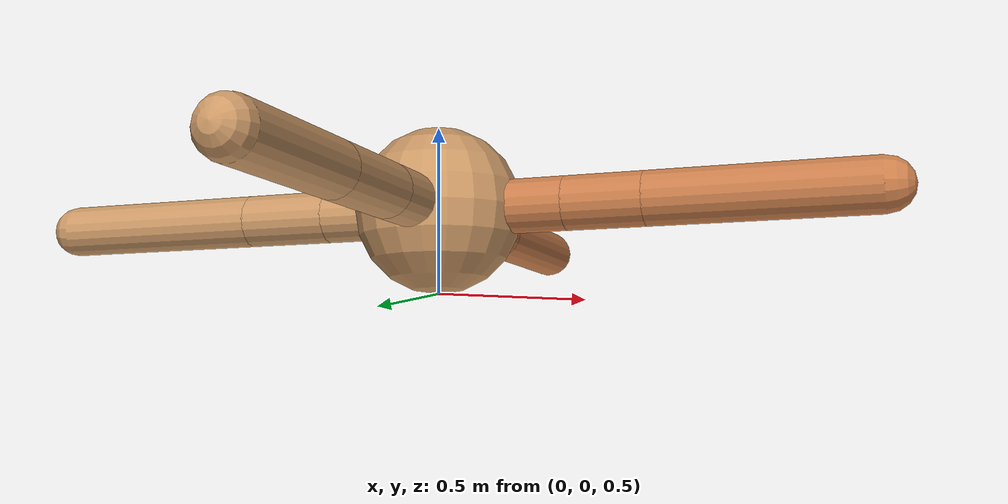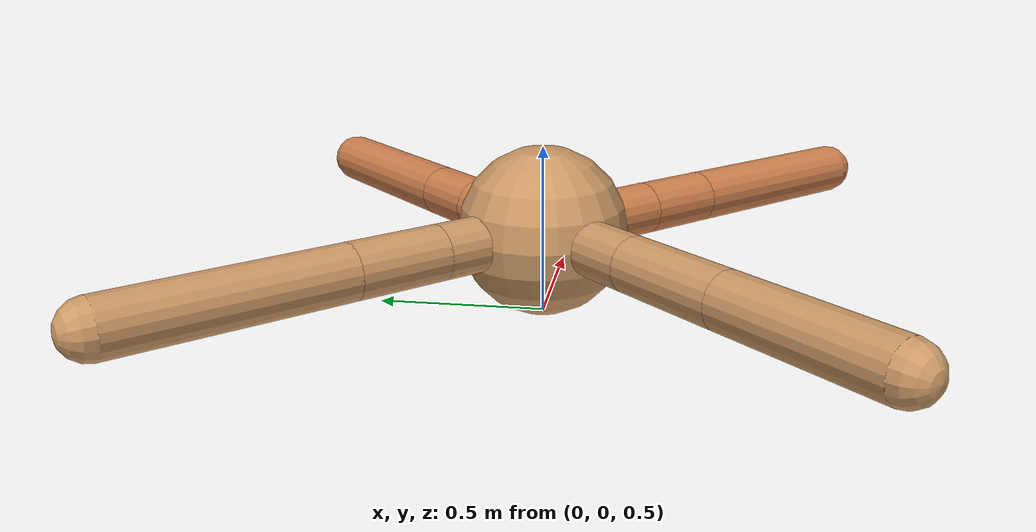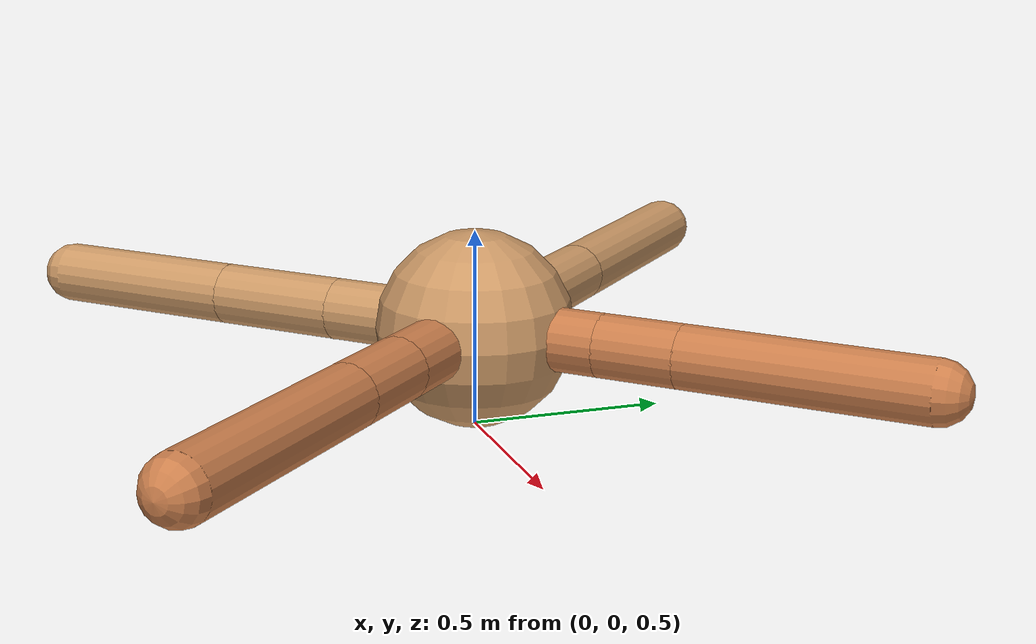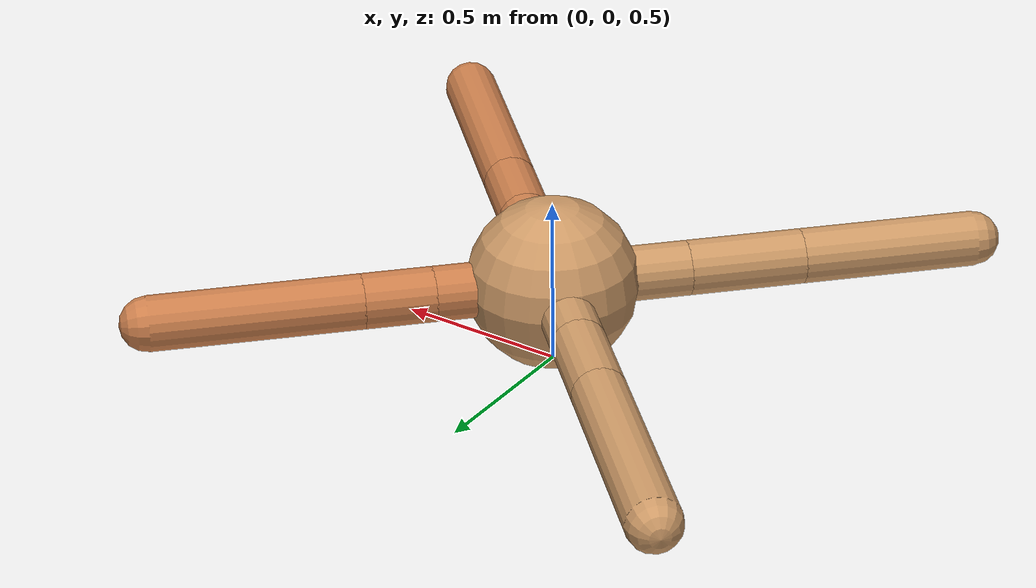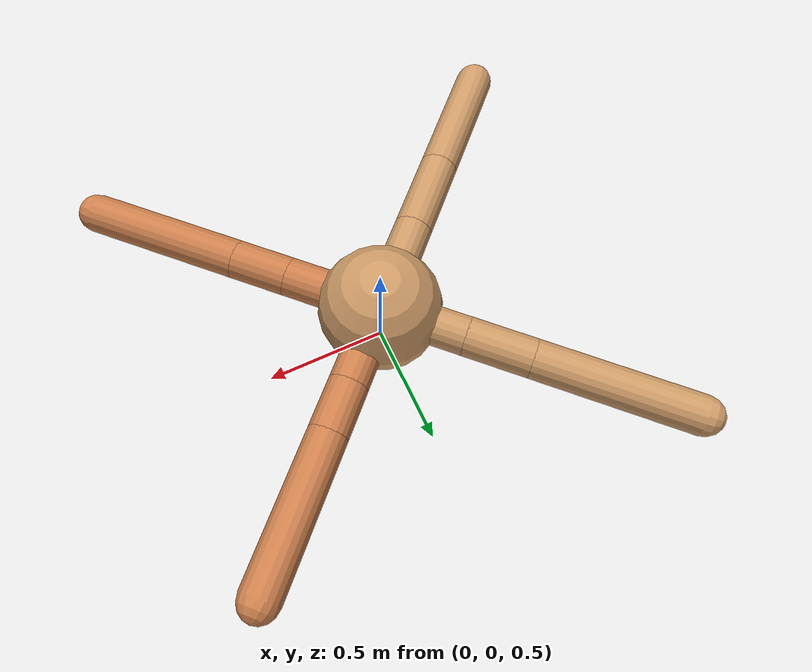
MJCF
<mujoco model="ant">
  <compiler angle="degree" coordinate="local" inertiafromgeom="true" />
  <option integrator="RK4" timestep="0.01" />
  <custom>
    <numeric data="0.0 0.0 0.55 1.0 0.0 0.0 0.0 0.0 1.0 0.0 -1.0 0.0 -1.0 0.0 1.0" name="init_qpos" />
  </custom>
  <default>
    <joint armature="1" damping="1" limited="true" />
    <geom conaffinity="0" condim="3" density="5.0" friction="1.5 0.1 0.1" margin="0.01" rgba="0.8 0.6 0.4 1" />
  </default>
  <worldbody>
    <body name="torso" pos="0 0 0.75">
      <geom name="torso_geom" pos="0 0 0" size="0.25" type="sphere" />

      <body name="front_left_leg" pos="0 0 0">
        <geom fromto="0.0 0.0 0.0 0.24409960178601553 0.24409960178601553 0.0" name="aux_1_geom" size="0.08" type="capsule" rgba=".8 .5 .3 1" />
        <body name="aux_1" pos="0.24409960178601553 0.24409960178601553 0.0">
          <joint axis="0 0 1" name="hip_1" pos="0.0 0.0 0.0" range="-40 40" type="hinge" />
          <geom fromto="0.0 0.0 0.0 0.14502465467326928 0.14502465467326928 0.0" name="left_leg_geom" size="0.08" type="capsule" rgba=".8 .5 .3 1" />
          <body pos="0.14502465467326928 0.14502465467326928 0.0" name="front_left_foot">
            <joint axis="-1 1 0" name="ankle_1" pos="0.0 0.0 0.0" range="30 100" type="hinge" />
            <geom fromto="0.0 0.0 0.0 0.4317203549858557 0.4317203549858557 0.0" name="left_ankle_geom" size="0.08" type="capsule" rgba=".8 .5 .3 1" />
          </body>
        </body>
      </body>
      <body name="front_right_leg" pos="0 0 0">
        <geom fromto="0.0 0.0 0.0 -0.253257381434705 0.253257381434705 0.0" name="aux_2_geom" size="0.08" type="capsule" />
        <body name="aux_2" pos="-0.253257381434705 0.253257381434705 0.0">
          <joint axis="0 0 1" name="hip_2" pos="0.0 0.0 0.0" range="-40 40" type="hinge" />
          <geom fromto="0.0 0.0 0.0 -0.1900435114168388 0.1900435114168388 0.0" name="right_leg_geom" size="0.08" type="capsule" />
          <body pos="-0.1900435114168388 0.1900435114168388 0.0" name="front_right_foot">
            <joint axis="1 1 0" name="ankle_2" pos="0.0 0.0 0.0" range="-100 -30" type="hinge" />
            <geom fromto="0.0 0.0 0.0 -0.46264765233037725 0.46264765233037725 0.0" name="right_ankle_geom" size="0.08" type="capsule" />
          </body>
        </body>
      </body>
      <body name="left_back_leg" pos="0 0 0">
        <geom fromto="0.0 0.0 0.0 -0.2801804643676628 -0.2801804643676628 0.0" name="aux_3_geom" size="0.08" type="capsule" />
        <body name="aux_3" pos="-0.2801804643676628 -0.2801804643676628 0.0">
          <joint axis="0 0 1" name="hip_3" pos="0.0 0.0 0.0" range="-40 40" type="hinge" />
          <geom fromto="0.0 0.0 0.0 -0.23866028800570027 -0.23866028800570027 0.0" name="back_leg_geom" size="0.08" type="capsule" />
          <body pos="-0.23866028800570027 -0.23866028800570027 0.0" name="left_back_foot">
            <joint axis="-1 1 0" name="ankle_3" pos="0.0 0.0 0.0" range="-100 -30" type="hinge" />
            <geom fromto="0.0 0.0 0.0 -0.36558989843866635 -0.36558989843866635 0.0" name="third_ankle_geom" size="0.08" type="capsule" />
          </body>
        </body>
      </body>
      <body name="right_back_leg" pos="0 0 0">
        <geom fromto="0.0 0.0 0.0 0.27988095086493064 -0.27988095086493064 0.0" name="aux_4_geom" size="0.08" type="capsule" rgba=".8 .5 .3 1" />
        <body name="aux_4" pos="0.27988095086493064 -0.27988095086493064 0.0">
          <joint axis="0 0 1" name="hip_4" pos="0.0 0.0 0.0" range="-40 40" type="hinge" />
          <geom fromto="0.0 0.0 0.0 0.16447073657936082 -0.16447073657936082 0.0" name="rightback_leg_geom" size="0.08" type="capsule" rgba=".8 .5 .3 1" />
          <body pos="0.16447073657936082 -0.16447073657936082 0.0" name="right_back_foot">
            <joint axis="1 1 0" name="ankle_4" pos="0.0 0.0 0.0" range="30 100" type="hinge" />
            <geom fromto="0.0 0.0 0.0 0.4572999111222739 -0.4572999111222739 0.0" name="fourth_ankle_geom" size="0.08" type="capsule" rgba=".8 .5 .3 1" />
          </body>
        </body>
      </body>
    </body>
  </worldbody>
  <actuator>
    <motor ctrllimited="true" ctrlrange="-1.0 1.0" joint="hip_4" gear="150" />
    <motor ctrllimited="true" ctrlrange="-1.0 1.0" joint="ankle_4" gear="150" />
    <motor ctrllimited="true" ctrlrange="-1.0 1.0" joint="hip_1" gear="150" />
    <motor ctrllimited="true" ctrlrange="-1.0 1.0" joint="ankle_1" gear="150" />
    <motor ctrllimited="true" ctrlrange="-1.0 1.0" joint="hip_2" gear="150" />
    <motor ctrllimited="true" ctrlrange="-1.0 1.0" joint="ankle_2" gear="150" />
    <motor ctrllimited="true" ctrlrange="-1.0 1.0" joint="hip_3" gear="150" />
    <motor ctrllimited="true" ctrlrange="-1.0 1.0" joint="ankle_3" gear="150" />
  </actuator>
</mujoco>
